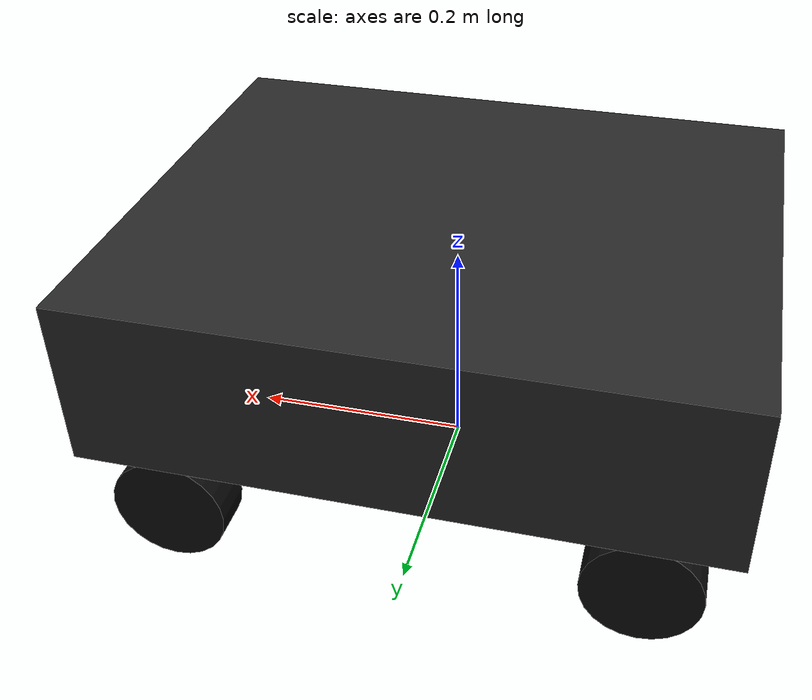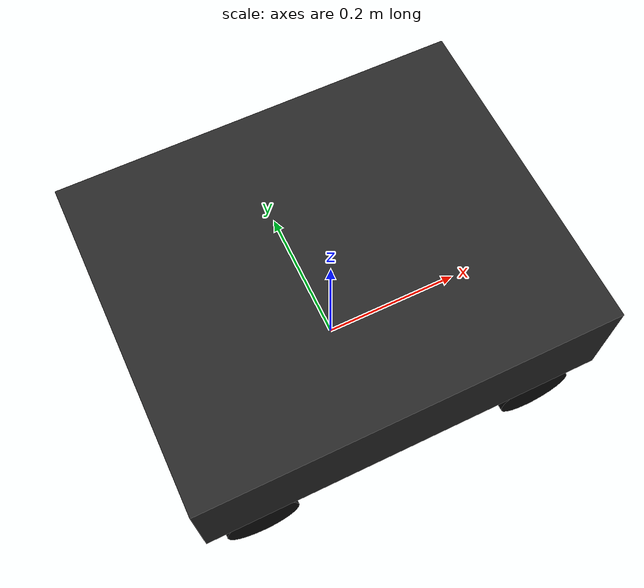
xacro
<?xml version="1.0"?>

<robot xmlns:xacro="http://www.ros.org/wiki/xacro"
       xmlns:gz="http://gazebosim.org/schema"
       name="mecanum_robot">

  <!-- ROBOT PARAMETERS                                      -->

  <xacro:property name="robot_length" value="0.55"/>
  <xacro:property name="robot_width"  value="0.45"/>
  <xacro:property name="robot_height" value="0.15"/>

  <xacro:property name="wheel_radius" value="0.05"/>
  <xacro:property name="wheel_width"  value="0.04"/>

  <xacro:property name="wheel_x" value="0.20"/>
  <xacro:property name="wheel_y" value="0.20"/>

  <xacro:property name="laser_height" value="0.02"/>

  <!-- MATERIALS                                             -->

  <material name="body_material">
    <color rgba="0.15 0.15 0.15 1.0"/>
  </material>

  <material name="wheel_material">
    <color rgba="0.05 0.05 0.05 1.0"/>
  </material>

  <material name="laser_material">
    <color rgba="0.8 0.1 0.1 1.0"/>
  </material>

  <!-- BASE LINK                                              -->

  <link name="base_link">

    <visual>
      <origin xyz="0 0 0.175" rpy="0 0 0"/>
      <geometry>
        <box size="${robot_length} ${robot_width} ${robot_height}"/>
      </geometry>
      <material name="body_material"/>
    </visual>

    <collision>
      <origin xyz="0 0 0.175" rpy="0 0 0"/>
      <geometry>
        <box size="${robot_length} ${robot_width} ${robot_height}"/>
      </geometry>
    </collision>

    <inertial>
      <origin xyz="0 0 0.175" rpy="0 0 0"/>
      <mass value="10.0"/>

      <inertia
        ixx="0.5"
        ixy="0.0"
        ixz="0.0"
        iyy="0.5"
        iyz="0.0"
        izz="0.5"/>
    </inertial>

  </link>

  <!-- WHEEL MACRO                                            -->

  <xacro:macro name="wheel" params="name x y">

    <link name="${name}">

      <visual>
        <origin xyz="0 0 0" rpy="${pi/2} 0 0"/>
        <geometry>
          <cylinder
            radius="${wheel_radius}"
            length="${wheel_width}"/>
        </geometry>
        <material name="wheel_material"/>
      </visual>

      <collision>
        <origin xyz="0 0 0" rpy="${pi/2} 0 0"/>
        <geometry>
          <cylinder
            radius="${wheel_radius}"
            length="${wheel_width}"/>
        </geometry>
      </collision>

      <inertial>
        <mass value="1.0"/>
        <inertia
          ixx="0.001"
          ixy="0.0"
          ixz="0.0"
          iyy="0.001"
          iyz="0.0"
          izz="0.001"/>
      </inertial>

    </link>

    <joint name="${name}_joint" type="continuous">

      <parent link="base_link"/>
      <child link="${name}"/>

      <origin
        xyz="${x} ${y} ${wheel_radius}"
        rpy="0 0 0"/>

      <axis xyz="0 1 0"/>

      <dynamics damping="0.2"/>

    </joint>

  </xacro:macro>

  <!-- FOUR MECANUM WHEELS                                    -->

  <xacro:wheel
    name="front_left_wheel"
    x="${wheel_x}"
    y="${wheel_y}"/>

  <xacro:wheel
    name="front_right_wheel"
    x="${wheel_x}"
    y="-${wheel_y}"/>

  <xacro:wheel
    name="rear_left_wheel"
    x="-${wheel_x}"
    y="${wheel_y}"/>

  <xacro:wheel
    name="rear_right_wheel"
    x="-${wheel_x}"
    y="-${wheel_y}"/>

  <!-- MECANUM FRICTION MODEL                                 -->

  <gazebo reference="front_left_wheel">
    <collision>
      <surface>
        <friction>
          <ode>
            <mu>1.0</mu>
            <mu2>0.0</mu2>
            <fdir1 gz:expressed_in="base_link">1 -1 0</fdir1>
          </ode>
        </friction>
      </surface>
    </collision>
  </gazebo>

  <gazebo reference="front_right_wheel">
    <collision>
      <surface>
        <friction>
          <ode>
            <mu>1.0</mu>
            <mu2>0.0</mu2>
            <fdir1 gz:expressed_in="base_link">1 1 0</fdir1>
          </ode>
        </friction>
      </surface>
    </collision>
  </gazebo>

  <gazebo reference="rear_left_wheel">
    <collision>
      <surface>
        <friction>
          <ode>
            <mu>1.0</mu>
            <mu2>0.0</mu2>
            <fdir1 gz:expressed_in="base_link">1 1 0</fdir1>
          </ode>
        </friction>
      </surface>
    </collision>
  </gazebo>

  <gazebo reference="rear_right_wheel">
    <collision>
      <surface>
        <friction>
          <ode>
            <mu>1.0</mu>
            <mu2>0.0</mu2>
            <fdir1 gz:expressed_in="base_link">1 -1 0</fdir1>
          </ode>
        </friction>
      </surface>
    </collision>
  </gazebo>

  <!-- ROS 2 CONTROL                                         -->

  <ros2_control name="GazeboSimSystem" type="system">

    <hardware>
      <plugin>gz_ros2_control/GazeboSimSystem</plugin>
    </hardware>

    <joint name="front_left_wheel_joint">

      <command_interface name="velocity">
        <param name="min">-10</param>
        <param name="max">10</param>
      </command_interface>

      <state_interface name="position"/>
      <state_interface name="velocity"/>

    </joint>

    <joint name="front_right_wheel_joint">

      <command_interface name="velocity">
        <param name="min">-10</param>
        <param name="max">10</param>
      </command_interface>

      <state_interface name="position"/>
      <state_interface name="velocity"/>

    </joint>

    <joint name="rear_left_wheel_joint">

      <command_interface name="velocity">
        <param name="min">-10</param>
        <param name="max">10</param>
      </command_interface>

      <state_interface name="position"/>
      <state_interface name="velocity"/>

    </joint>

    <joint name="rear_right_wheel_joint">

      <command_interface name="velocity">
        <param name="min">-10</param>
        <param name="max">10</param>
      </command_interface>

      <state_interface name="position"/>
      <state_interface name="velocity"/>

    </joint>

  </ros2_control>

  <!-- GZ ROS 2 CONTROL PLUGIN                               -->

  <gazebo>

    <plugin
      filename="gz_ros2_control-system"
      name="gz_ros2_control::GazeboSimROS2ControlPlugin">

      <parameters>
        $(find mecanum_description)/config/mecanum_drive_controller.yaml
      </parameters>

      <ros>
        <remapping>
          /mecanum_drive_controller/reference:=/cmd_vel
        </remapping>

        <remapping>
          /mecanum_drive_controller/odom:=/odom
        </remapping>
      </ros>

    </plugin>

  </gazebo>

  <!-- LASER FRAME                                            -->

  <link name="laser_frame">

    <visual>
      <origin xyz="0 0 0"/>
      <geometry>
        <cylinder
          radius="0.035"
          length="0.04"/>
      </geometry>
      <material name="laser_material"/>
    </visual>

  </link>

  <joint name="laser_joint" type="fixed">

    <parent link="base_link"/>
    <child link="laser_frame"/>

    <origin
      xyz="0 0 ${laser_height}"
      rpy="0 0 0"/>

  </joint>

</robot>
